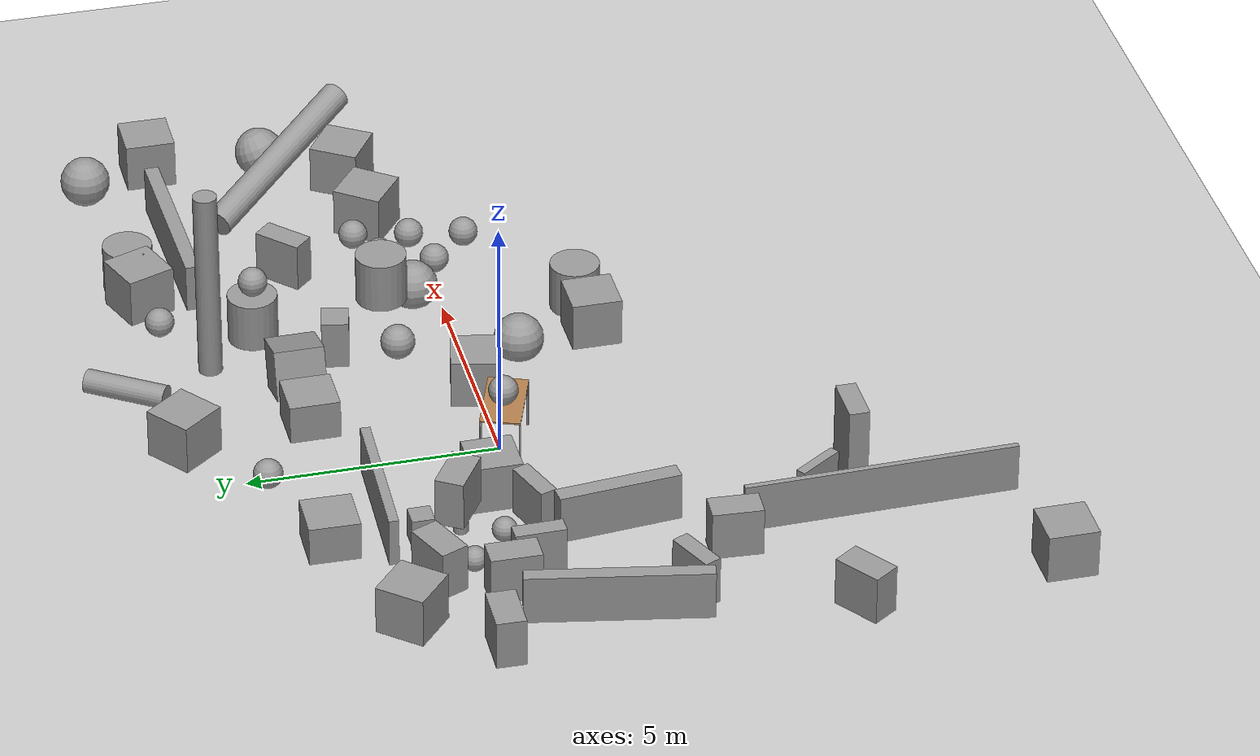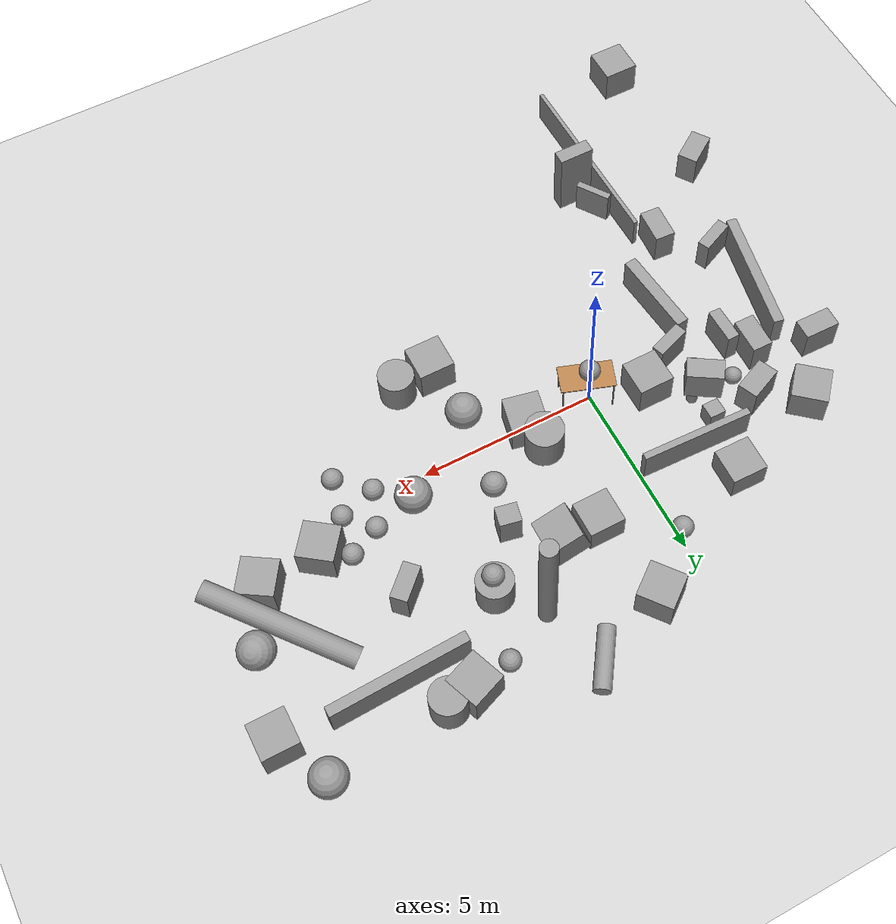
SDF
<sdf version="1.7">
 <world name="default">
  <model name="ground_plane">
   <static>1</static>
   <link name="link">
    <collision name="collision">
     <geometry><plane><normal>0 0 1</normal><size>100 100</size></plane></geometry>
     <surface>
      <contact><collide_bitmask>65535</collide_bitmask></contact>
      <friction><ode><mu>100</mu><mu2>50</mu2></ode></friction>
     </surface>
    </collision>
    <visual name="visual">
     <cast_shadows>0</cast_shadows>
     <geometry><plane><normal>0 0 1</normal><size>100 100</size></plane></geometry>
     <material>
      <script><uri>file://media/materials/scripts/gazebo.material</uri><name>Gazebo/Grey</name></script>
     </material>
    </visual>
   </link>
  </model>
  <model name="unit_sphere">
   <model name="table">
    <static>1</static>
    <link name="link">
     <collision name="surface">
      <pose>0 0 1 0 -0 0</pose>
      <geometry><box><size>1.5 0.8 0.03</size></box></geometry>
      <surface><friction><ode><mu>0.6</mu><mu2>0.6</mu2></ode></friction></surface>
     </collision>
     <visual name="visual1">
      <pose>0 0 1 0 -0 0</pose>
      <geometry><box><size>1.5 0.8 0.03</size></box></geometry>
      <material>
       <script><uri>file://media/materials/scripts/gazebo.material</uri><name>Gazebo/Wood</name></script>
      </material>
     </visual>
     <collision name="front_left_leg">
      <pose>0.68 0.38 0.5 0 -0 0</pose>
      <geometry><cylinder><radius>0.02</radius><length>1</length></cylinder></geometry>
     </collision>
     <visual name="front_left_leg">
      <pose>0.68 0.38 0.5 0 -0 0</pose>
      <geometry><cylinder><radius>0.02</radius><length>1</length></cylinder></geometry>
      <material>
       <script><uri>file://media/materials/scripts/gazebo.material</uri><name>Gazebo/Grey</name></script>
      </material>
     </visual>
     <collision name="front_right_leg">
      <pose>0.68 -0.38 0.5 0 -0 0</pose>
      <geometry><cylinder><radius>0.02</radius><length>1</length></cylinder></geometry>
     </collision>
     <visual name="front_right_leg">
      <pose>0.68 -0.38 0.5 0 -0 0</pose>
      <geometry><cylinder><radius>0.02</radius><length>1</length></cylinder></geometry>
      <material>
       <script><uri>file://media/materials/scripts/gazebo.material</uri><name>Gazebo/Grey</name></script>
      </material>
     </visual>
     <collision name="back_right_leg">
      <pose>-0.68 -0.38 0.5 0 -0 0</pose>
      <geometry><cylinder><radius>0.02</radius><length>1</length></cylinder></geometry>
     </collision>
     <visual name="back_right_leg">
      <pose>-0.68 -0.38 0.5 0 -0 0</pose>
      <geometry><cylinder><radius>0.02</radius><length>1</length></cylinder></geometry>
      <material>
       <script><uri>file://media/materials/scripts/gazebo.material</uri><name>Gazebo/Grey</name></script>
      </material>
     </visual>
     <collision name="back_left_leg">
      <pose>-0.68 0.38 0.5 0 -0 0</pose>
      <geometry><cylinder><radius>0.02</radius><length>1</length></cylinder></geometry>
     </collision>
     <visual name="back_left_leg">
      <pose>-0.68 0.38 0.5 0 -0 0</pose>
      <geometry><cylinder><radius>0.02</radius><length>1</length></cylinder></geometry>
      <material>
       <script><uri>file://media/materials/scripts/gazebo.material</uri><name>Gazebo/Grey</name></script>
      </material>
     </visual>
    </link>
    <pose>-2.51477 -2.25186 -0.442404 0 -0 0</pose>
   </model>
   <static>0</static>
   <pose>3.20141 1.17795 0.5 0 0 -0.34091</pose>
  </model>
  <model name="unit_sphere_0">
   <pose>5.54798 0.485771 0.291197 0 -0 0</pose>
   <link name="link">
    <inertial>
     <mass>1</mass>
     <inertia><ixx>0.1</ixx><ixy>0</ixy><ixz>0</ixz><iyy>0.1</iyy><iyz>0</iyz><izz>0.1</izz></inertia>
    </inertial>
    <collision name="collision"><geometry><sphere><radius>0.5</radius></sphere></geometry></collision>
    <visual name="visual">
     <geometry><sphere><radius>0.5</radius></sphere></geometry>
     <material>
      <script><name>Gazebo/Grey</name><uri>file://media/materials/scripts/gazebo.material</uri></script>
     </material>
    </visual>
   </link>
  </model>
  <model name="unit_sphere_0_clone">
   <pose>-0.150809 4.58878 0.291197 0 -0 0</pose>
   <link name="link">
    <inertial>
     <mass>1</mass>
     <inertia><ixx>0.1</ixx><ixy>0</ixy><ixz>0</ixz><iyy>0.1</iyy><iyz>0</iyz><izz>0.1</izz></inertia>
    </inertial>
    <collision name="collision"><geometry><sphere><radius>0.291197</radius></sphere></geometry></collision>
    <visual name="visual">
     <geometry><sphere><radius>0.291197</radius></sphere></geometry>
     <material>
      <script><name>Gazebo/Grey</name><uri>file://media/materials/scripts/gazebo.material</uri></script>
     </material>
    </visual>
   </link>
  </model>
  <model name="unit_sphere_0_clone_0">
   <pose>7.21686 -0.927743 0.291197 0 -0 0</pose>
   <link name="link">
    <inertial>
     <mass>1</mass>
     <inertia><ixx>0.1</ixx><ixy>0</ixy><ixz>0</ixz><iyy>0.1</iyy><iyz>0</iyz><izz>0.1</izz></inertia>
    </inertial>
    <collision name="collision"><geometry><sphere><radius>0.291197</radius></sphere></geometry></collision>
    <visual name="visual">
     <geometry><sphere><radius>0.291197</radius></sphere></geometry>
     <material>
      <script><name>Gazebo/Grey</name><uri>file://media/materials/scripts/gazebo.material</uri></script>
     </material>
    </visual>
   </link>
  </model>
  <model name="unit_sphere_0_clone_1">
   <pose>6.40605 -0.147602 0.291197 0 -0 0</pose>
   <link name="link">
    <inertial>
     <mass>1</mass>
     <inertia><ixx>0.1</ixx><ixy>0</ixy><ixz>0</ixz><iyy>0.1</iyy><iyz>0</iyz><izz>0.1</izz></inertia>
    </inertial>
    <collision name="collision"><geometry><sphere><radius>0.291197</radius></sphere></geometry></collision>
    <visual name="visual">
     <geometry><sphere><radius>0.291197</radius></sphere></geometry>
     <material>
      <script><name>Gazebo/Grey</name><uri>file://media/materials/scripts/gazebo.material</uri></script>
     </material>
    </visual>
   </link>
  </model>
  <model name="unit_sphere_0_clone_2">
   <pose>7.63755 1.25974 0.291197 0 -0 0</pose>
   <link name="link">
    <inertial>
     <mass>1</mass>
     <inertia><ixx>0.1</ixx><ixy>0</ixy><ixz>0</ixz><iyy>0.1</iyy><iyz>0</iyz><izz>0.1</izz></inertia>
    </inertial>
    <collision name="collision"><geometry><sphere><radius>0.291197</radius></sphere></geometry></collision>
    <visual name="visual">
     <geometry><sphere><radius>0.291197</radius></sphere></geometry>
     <material>
      <script><name>Gazebo/Grey</name><uri>file://media/materials/scripts/gazebo.material</uri></script>
     </material>
    </visual>
   </link>
  </model>
  <model name="unit_sphere_0_clone_3">
   <pose>6.78619 0.894855 0.344254 0 -0 0</pose>
   <link name="link">
    <inertial>
     <mass>1</mass>
     <inertia><ixx>0.1</ixx><ixy>0</ixy><ixz>0</ixz><iyy>0.1</iyy><iyz>0</iyz><izz>0.1</izz></inertia>
    </inertial>
    <collision name="collision"><geometry><sphere><radius>0.291196</radius></sphere></geometry></collision>
    <visual name="visual">
     <geometry><sphere><radius>0.291196</radius></sphere></geometry>
     <material>
      <script><name>Gazebo/Grey</name><uri>file://media/materials/scripts/gazebo.material</uri></script>
     </material>
    </visual>
   </link>
  </model>
  <model name="unit_sphere_0_clone_4">
   <pose>0.006465 -0.072944 1.36379 0 1e-06 0</pose>
   <link name="link">
    <inertial>
     <mass>1</mass>
     <inertia><ixx>0.1</ixx><ixy>0</ixy><ixz>0</ixz><iyy>0.1</iyy><iyz>0</iyz><izz>0.1</izz></inertia>
    </inertial>
    <collision name="collision"><geometry><sphere><radius>0.291197</radius></sphere></geometry></collision>
    <visual name="visual">
     <geometry><sphere><radius>0.291197</radius></sphere></geometry>
     <material>
      <script><name>Gazebo/Grey</name><uri>file://media/materials/scripts/gazebo.material</uri></script>
     </material>
    </visual>
   </link>
  </model>
  <model name="unit_sphere_0_clone_5">
   <pose>7.42804 0.154026 0.291197 0.010448 -0.009913 -0.012454</pose>
   <link name="link">
    <inertial>
     <mass>1</mass>
     <inertia><ixx>0.1</ixx><ixy>0</ixy><ixz>0</ixz><iyy>0.1</iyy><iyz>0</iyz><izz>0.1</izz></inertia>
    </inertial>
    <collision name="collision"><geometry><sphere><radius>0.291197</radius></sphere></geometry></collision>
    <visual name="visual">
     <geometry><sphere><radius>0.291197</radius></sphere></geometry>
     <material>
      <script><name>Gazebo/Grey</name><uri>file://media/materials/scripts/gazebo.material</uri></script>
     </material>
    </visual>
   </link>
  </model>
  <model name="unit_sphere_0_clone_6">
   <pose>4.93053 3.84155 1.29116 -0.011198 0.004689 2.1e-05</pose>
   <link name="link">
    <inertial>
     <mass>1</mass>
     <inertia><ixx>0.1</ixx><ixy>0</ixy><ixz>0</ixz><iyy>0.1</iyy><iyz>0</iyz><izz>0.1</izz></inertia>
    </inertial>
    <collision name="collision"><geometry><sphere><radius>0.291197</radius></sphere></geometry></collision>
    <visual name="visual">
     <geometry><sphere><radius>0.291197</radius></sphere></geometry>
     <material>
      <script><name>Gazebo/Grey</name><uri>file://media/materials/scripts/gazebo.material</uri></script>
     </material>
    </visual>
   </link>
  </model>
  <model name="unit_cylinder_0">
   <pose>2.39577 1.78612 2.74894 0 0 -0.066001</pose>
   <link name="link">
    <inertial>
     <mass>1</mass>
     <inertia><ixx>0.145833</ixx><ixy>0</ixy><ixz>0</ixz><iyy>0.145833</iyy><iyz>0</iyz><izz>0.125</izz></inertia>
    </inertial>
    <collision name="collision">
     <geometry><cylinder><radius>0.499998</radius><length>1</length></cylinder></geometry>
    </collision>
    <visual name="visual">
     <geometry><cylinder><radius>0.499998</radius><length>1</length></cylinder></geometry>
     <material>
      <script><name>Gazebo/Grey</name><uri>file://media/materials/scripts/gazebo.material</uri></script>
     </material>
    </visual>
   </link>
  </model>
  <model name="unit_cylinder_1">
   <pose>4.91267 3.8665 0.499961 2e-06 2e-06 -0.000394</pose>
   <link name="link">
    <inertial>
     <mass>1</mass>
     <inertia><ixx>0.145833</ixx><ixy>0</ixy><ixz>0</ixz><iyy>0.145833</iyy><iyz>0</iyz><izz>0.125</izz></inertia>
    </inertial>
    <collision name="collision">
     <geometry><cylinder><radius>0.5</radius><length>1</length></cylinder></geometry>
    </collision>
    <visual name="visual">
     <geometry><cylinder><radius>0.5</radius><length>1</length></cylinder></geometry>
     <material>
      <script><name>Gazebo/Grey</name><uri>file://media/materials/scripts/gazebo.material</uri></script>
     </material>
    </visual>
   </link>
  </model>
  <model name="unit_box_0">
   <pose>-2.32071 3.83463 0.273423 0 0 -0.02053</pose>
   <link name="link">
    <inertial>
     <mass>1</mass>
     <inertia>
      <ixx>0.166667</ixx>
      <ixy>0</ixy>
      <ixz>0</ixz>
      <iyy>0.166667</iyy>
      <iyz>0</iyz>
      <izz>0.166667</izz>
     </inertia>
    </inertial>
    <collision name="collision"><geometry><box><size>1 1 1</size></box></geometry></collision>
    <visual name="visual">
     <geometry><box><size>1 1 1</size></box></geometry>
     <material>
      <script><name>Gazebo/Grey</name><uri>file://media/materials/scripts/gazebo.material</uri></script>
     </material>
    </visual>
   </link>
  </model>
  <model name="unit_box_1">
   <pose>1.33301 5.92734 0.5 0 -0 0.660682</pose>
   <link name="link">
    <inertial>
     <mass>1</mass>
     <inertia>
      <ixx>0.166667</ixx>
      <ixy>0</ixy>
      <ixz>0</ixz>
      <iyy>0.166667</iyy>
      <iyz>0</iyz>
      <izz>0.166667</izz>
     </inertia>
    </inertial>
    <collision name="collision"><geometry><box><size>1 1 1</size></box></geometry></collision>
    <visual name="visual">
     <geometry><box><size>1 1 1</size></box></geometry>
     <material>
      <script><name>Gazebo/Grey</name><uri>file://media/materials/scripts/gazebo.material</uri></script>
     </material>
    </visual>
   </link>
  </model>
  <model name="unit_sphere_1">
   <pose>3.25967 -1.14554 0.259212 0 -0 0</pose>
   <link name="link">
    <inertial>
     <mass>1</mass>
     <inertia><ixx>0.1</ixx><ixy>0</ixy><ixz>0</ixz><iyy>0.1</iyy><iyz>0</iyz><izz>0.1</izz></inertia>
    </inertial>
    <collision name="collision"><geometry><sphere><radius>0.5</radius></sphere></geometry></collision>
    <visual name="visual">
     <geometry><sphere><radius>0.5</radius></sphere></geometry>
     <material>
      <script><name>Gazebo/Grey</name><uri>file://media/materials/scripts/gazebo.material</uri></script>
     </material>
    </visual>
   </link>
  </model>
  <model name="unit_box_2">
   <pose>1.67633 3.38533 0.278117 -9e-06 1e-05 0.001096</pose>
   <link name="link">
    <inertial>
     <mass>1</mass>
     <inertia>
      <ixx>0.166667</ixx>
      <ixy>0</ixy>
      <ixz>0</ixz>
      <iyy>0.166667</iyy>
      <iyz>0</iyz>
      <izz>0.166667</izz>
     </inertia>
    </inertial>
    <collision name="collision"><geometry><box><size>1 1 0.999997</size></box></geometry></collision>
    <visual name="visual">
     <geometry><box><size>1 1 0.999997</size></box></geometry>
     <material>
      <script><name>Gazebo/Grey</name><uri>file://media/materials/scripts/gazebo.material</uri></script>
     </material>
    </visual>
   </link>
  </model>
  <model name="unit_box_3">
   <pose>2.78012 3.432 0.631595 -0.000204 -1.29072 0.001222</pose>
   <link name="link">
    <inertial>
     <mass>1</mass>
     <inertia>
      <ixx>0.166667</ixx>
      <ixy>0</ixy>
      <ixz>0</ixz>
      <iyy>0.166667</iyy>
      <iyz>0</iyz>
      <izz>0.166667</izz>
     </inertia>
    </inertial>
    <collision name="collision"><geometry><box><size>1 0.999997 1</size></box></geometry></collision>
    <visual name="visual">
     <geometry><box><size>1 0.999997 1</size></box></geometry>
     <material>
      <script><name>Gazebo/Grey</name><uri>file://media/materials/scripts/gazebo.material</uri></script>
     </material>
    </visual>
   </link>
  </model>
  <model name="unit_box_4">
   <pose>8.31013 0.830157 0.5 0 3e-06 -0.645762</pose>
   <link name="link">
    <inertial>
     <mass>1</mass>
     <inertia>
      <ixx>0.166667</ixx>
      <ixy>0</ixy>
      <ixz>0</ixz>
      <iyy>0.166667</iyy>
      <iyz>0</iyz>
      <izz>0.166667</izz>
     </inertia>
    </inertial>
    <collision name="collision"><geometry><box><size>1 1 1</size></box></geometry></collision>
    <visual name="visual">
     <geometry><box><size>1 1 1</size></box></geometry>
     <material>
      <script><name>Gazebo/Grey</name><uri>file://media/materials/scripts/gazebo.material</uri></script>
     </material>
    </visual>
   </link>
  </model>
  <model name="unit_sphere_0_clone_3_clone">
   <pose>5.42517 5.64532 0.291197 0 -0 0</pose>
   <link name="link">
    <inertial>
     <mass>1</mass>
     <inertia><ixx>0.1</ixx><ixy>0</ixy><ixz>0</ixz><iyy>0.1</iyy><iyz>0</iyz><izz>0.1</izz></inertia>
    </inertial>
    <collision name="collision"><geometry><sphere><radius>0.291197</radius></sphere></geometry></collision>
    <visual name="visual">
     <geometry><sphere><radius>0.291197</radius></sphere></geometry>
     <material>
      <script><name>Gazebo/Grey</name><uri>file://media/materials/scripts/gazebo.material</uri></script>
     </material>
    </visual>
   </link>
  </model>
  <model name="unit_box_5">
   <pose>6.49163 5.84807 0.499995 -1.57079 -1.57079 1.93464</pose>
   <link name="link">
    <inertial>
     <mass>1</mass>
     <inertia>
      <ixx>0.166667</ixx>
      <ixy>0</ixy>
      <ixz>0</ixz>
      <iyy>0.166667</iyy>
      <iyz>0</iyz>
      <izz>0.166667</izz>
     </inertia>
    </inertial>
    <collision name="collision"><geometry><box><size>1 1 1</size></box></geometry></collision>
    <visual name="visual">
     <geometry><box><size>1 1 1</size></box></geometry>
     <material>
      <script><name>Gazebo/Grey</name><uri>file://media/materials/scripts/gazebo.material</uri></script>
     </material>
    </visual>
   </link>
  </model>
  <model name="unit_cylinder_2">
   <pose>7.24066 5.93897 0.499993 0 -0 0.027733</pose>
   <link name="link">
    <inertial>
     <mass>1</mass>
     <inertia><ixx>0.145833</ixx><ixy>0</ixy><ixz>0</ixz><iyy>0.145833</iyy><iyz>0</iyz><izz>0.125</izz></inertia>
    </inertial>
    <collision name="collision">
     <geometry><cylinder><radius>0.500001</radius><length>1</length></cylinder></geometry>
    </collision>
    <visual name="visual">
     <geometry><cylinder><radius>0.500001</radius><length>1</length></cylinder></geometry>
     <material>
      <script><name>Gazebo/Grey</name><uri>file://media/materials/scripts/gazebo.material</uri></script>
     </material>
    </visual>
   </link>
  </model>
  <model name="unit_box_6">
   <pose>2.0012 0.00841 0.5 -0 -0 -0.20889</pose>
   <link name="link">
    <inertial>
     <mass>1</mass>
     <inertia>
      <ixx>0.166667</ixx>
      <ixy>0</ixy>
      <ixz>0</ixz>
      <iyy>0.166667</iyy>
      <iyz>0</iyz>
      <izz>0.166667</izz>
     </inertia>
    </inertial>
    <collision name="collision"><geometry><box><size>1 0.999998 1</size></box></geometry></collision>
    <visual name="visual">
     <geometry><box><size>1 0.999998 1</size></box></geometry>
     <material>
      <script><name>Gazebo/Grey</name><uri>file://media/materials/scripts/gazebo.material</uri></script>
     </material>
    </visual>
   </link>
  </model>
  <model name="unit_box_6_clone">
   <pose>-2.64273 1.43177 1.09239 -1e-06 -0 1.00675</pose>
   <link name="link">
    <inertial>
     <mass>1</mass>
     <inertia>
      <ixx>0.166667</ixx>
      <ixy>0</ixy>
      <ixz>0</ixz>
      <iyy>0.166667</iyy>
      <iyz>0</iyz>
      <izz>0.166667</izz>
     </inertia>
    </inertial>
    <collision name="collision"><geometry><box><size>0.577514 0.999999 1</size></box></geometry></collision>
    <visual name="visual">
     <geometry><box><size>0.577514 0.999999 1</size></box></geometry>
     <material>
      <script><name>Gazebo/Grey</name><uri>file://media/materials/scripts/gazebo.material</uri></script>
     </material>
    </visual>
   </link>
  </model>
  <model name="unit_box_6_clone_0">
   <pose>-4.18818 -3.56952 0.499687 -0.000187 -7e-06 -0.06133</pose>
   <link name="link">
    <inertial>
     <mass>1</mass>
     <inertia>
      <ixx>0.166667</ixx>
      <ixy>0</ixy>
      <ixz>0</ixz>
      <iyy>0.166667</iyy>
      <iyz>0</iyz>
      <izz>0.166667</izz>
     </inertia>
    </inertial>
    <collision name="collision"><geometry><box><size>0.577512 0.999999 1</size></box></geometry></collision>
    <visual name="visual">
     <geometry><box><size>0.577512 0.999999 1</size></box></geometry>
     <material>
      <script><name>Gazebo/Grey</name><uri>file://media/materials/scripts/gazebo.material</uri></script>
     </material>
    </visual>
   </link>
  </model>
  <model name="unit_box_6_clone_2">
   <pose>-4.60414 0.816018 0.499999 3e-06 2e-06 -0.0149</pose>
   <link name="link">
    <inertial>
     <mass>1</mass>
     <inertia>
      <ixx>0.166667</ixx>
      <ixy>0</ixy>
      <ixz>0</ixz>
      <iyy>0.166667</iyy>
      <iyz>0</iyz>
      <izz>0.166667</izz>
     </inertia>
    </inertial>
    <collision name="collision"><geometry><box><size>0.577513 1 1</size></box></geometry></collision>
    <visual name="visual">
     <geometry><box><size>0.577513 1 1</size></box></geometry>
     <material>
      <script><name>Gazebo/Grey</name><uri>file://media/materials/scripts/gazebo.material</uri></script>
     </material>
    </visual>
   </link>
  </model>
  <model name="unit_box_6_clone_3">
   <pose>-6.31696 1.36995 0.499862 9.7e-05 4e-06 -1.59211</pose>
   <link name="link">
    <inertial>
     <mass>1</mass>
     <inertia>
      <ixx>0.166667</ixx>
      <ixy>0</ixy>
      <ixz>0</ixz>
      <iyy>0.166667</iyy>
      <iyz>0</iyz>
      <izz>0.166667</izz>
     </inertia>
    </inertial>
    <collision name="collision"><geometry><box><size>0.577514 0.999997 1</size></box></geometry></collision>
    <visual name="visual">
     <geometry><box><size>0.577514 0.999997 1</size></box></geometry>
     <material>
      <script><name>Gazebo/Grey</name><uri>file://media/materials/scripts/gazebo.material</uri></script>
     </material>
    </visual>
   </link>
  </model>
  <model name="unit_box_6_clone_4">
   <pose>-3.93801 2.08413 0.5 0 1e-06 -1.16213</pose>
   <link name="link">
    <inertial>
     <mass>1</mass>
     <inertia>
      <ixx>0.166667</ixx>
      <ixy>0</ixy>
      <ixz>0</ixz>
      <iyy>0.166667</iyy>
      <iyz>0</iyz>
      <izz>0.166667</izz>
     </inertia>
    </inertial>
    <collision name="collision"><geometry><box><size>0.577514 1 1</size></box></geometry></collision>
    <visual name="visual">
     <geometry><box><size>0.577514 1 1</size></box></geometry>
     <material>
      <script><name>Gazebo/Grey</name><uri>file://media/materials/scripts/gazebo.material</uri></script>
     </material>
    </visual>
   </link>
  </model>
  <model name="unit_sphere_2">
   <pose>3.5769 1.22643 0.343236 0 -0 0</pose>
   <link name="link">
    <inertial>
     <mass>1</mass>
     <inertia><ixx>0.1</ixx><ixy>0</ixy><ixz>0</ixz><iyy>0.1</iyy><iyz>0</iyz><izz>0.1</izz></inertia>
    </inertial>
    <collision name="collision"><geometry><sphere><radius>0.343236</radius></sphere></geometry></collision>
    <visual name="visual">
     <geometry><sphere><radius>0.343236</radius></sphere></geometry>
     <material>
      <script><name>Gazebo/Grey</name><uri>file://media/materials/scripts/gazebo.material</uri></script>
     </material>
    </visual>
   </link>
  </model>
  <model name="unit_box_7">
   <pose>-2.89938 -6.18954 1.05836 -1e-06 -0 -0.000751</pose>
   <link name="link">
    <inertial>
     <mass>1</mass>
     <inertia>
      <ixx>0.166667</ixx>
      <ixy>0</ixy>
      <ixz>0</ixz>
      <iyy>0.166667</iyy>
      <iyz>0</iyz>
      <izz>0.166667</izz>
     </inertia>
    </inertial>
    <collision name="collision"><geometry><box><size>1 0.400151 2.11672</size></box></geometry></collision>
    <visual name="visual">
     <geometry><box><size>1 0.400151 2.11672</size></box></geometry>
     <material>
      <script><name>Gazebo/Grey</name><uri>file://media/materials/scripts/gazebo.material</uri></script>
     </material>
    </visual>
   </link>
  </model>
  <model name="unit_box_8">
   <pose>-3.61587 -6.60318 0.496914 -0.001137 2.1e-05 0.018725</pose>
   <link name="link">
    <inertial>
     <mass>1</mass>
     <inertia>
      <ixx>0.166667</ixx>
      <ixy>0</ixy>
      <ixz>0</ixz>
      <iyy>0.166667</iyy>
      <iyz>0</iyz>
      <izz>0.166667</izz>
     </inertia>
    </inertial>
    <collision name="collision"><geometry><box><size>0.114857 5.43189 1</size></box></geometry></collision>
    <visual name="visual">
     <geometry><box><size>0.114857 5.43189 1</size></box></geometry>
     <material>
      <script><name>Gazebo/Grey</name><uri>file://media/materials/scripts/gazebo.material</uri></script>
     </material>
    </visual>
   </link>
  </model>
  <model name="unit_box_9">
   <pose>-3.17966 -5.45481 0.5 0 -0 0.595987</pose>
   <link name="link">
    <inertial>
     <mass>1</mass>
     <inertia>
      <ixx>0.166667</ixx>
      <ixy>0</ixy>
      <ixz>0</ixz>
      <iyy>0.166667</iyy>
      <iyz>0</iyz>
      <izz>0.166667</izz>
     </inertia>
    </inertial>
    <collision name="collision"><geometry><box><size>0.195898 1 1</size></box></geometry></collision>
    <visual name="visual">
     <geometry><box><size>0.195898 1 1</size></box></geometry>
     <material>
      <script><name>Gazebo/Grey</name><uri>file://media/materials/scripts/gazebo.material</uri></script>
     </material>
    </visual>
   </link>
  </model>
  <model name="unit_box_10">
   <pose>-1.46532 0.505509 0.499982 -4e-06 -0 0.003376</pose>
   <link name="link">
    <inertial>
     <mass>1</mass>
     <inertia>
      <ixx>0.166667</ixx>
      <ixy>0</ixy>
      <ixz>0</ixz>
      <iyy>0.166667</iyy>
      <iyz>0</iyz>
      <izz>0.166667</izz>
     </inertia>
    </inertial>
    <collision name="collision"><geometry><box><size>1 1 1</size></box></geometry></collision>
    <visual name="visual">
     <geometry><box><size>1 1 1</size></box></geometry>
     <material>
      <script><name>Gazebo/Grey</name><uri>file://media/materials/scripts/gazebo.material</uri></script>
     </material>
    </visual>
   </link>
  </model>
  <model name="unit_cylinder_3">
   <pose>3.36756 6.68777 0.237798 1.57079 0.011281 -0.590006</pose>
   <link name="link">
    <inertial>
     <mass>1</mass>
     <inertia><ixx>0.145833</ixx><ixy>0</ixy><ixz>0</ixz><iyy>0.145833</iyy><iyz>0</iyz><izz>0.125</izz></inertia>
    </inertial>
    <collision name="collision">
     <geometry><cylinder><radius>0.237803</radius><length>1.67948</length></cylinder></geometry>
    </collision>
    <visual name="visual">
     <geometry><cylinder><radius>0.237803</radius><length>1.67948</length></cylinder></geometry>
     <material>
      <script><name>Gazebo/Grey</name><uri>file://media/materials/scripts/gazebo.material</uri></script>
     </material>
    </visual>
   </link>
  </model>
  <model name="unit_sphere_3">
   <pose>10.5269 6.21854 0.5 0 -0 0</pose>
   <link name="link">
    <inertial>
     <mass>1</mass>
     <inertia><ixx>0.1</ixx><ixy>0</ixy><ixz>0</ixz><iyy>0.1</iyy><iyz>0</iyz><izz>0.1</izz></inertia>
    </inertial>
    <collision name="collision"><geometry><sphere><radius>0.5</radius></sphere></geometry></collision>
    <visual name="visual">
     <geometry><sphere><radius>0.5</radius></sphere></geometry>
     <material>
      <script><name>Gazebo/Grey</name><uri>file://media/materials/scripts/gazebo.material</uri></script>
     </material>
    </visual>
   </link>
  </model>
  <model name="unit_sphere_3_clone_2">
   <pose>10.7916 2.54567 0.49999 -0.364464 0.365616 -0.067018</pose>
   <link name="link">
    <inertial>
     <mass>1</mass>
     <inertia><ixx>0.1</ixx><ixy>0</ixy><ixz>0</ixz><iyy>0.1</iyy><iyz>0</iyz><izz>0.1</izz></inertia>
    </inertial>
    <collision name="collision"><geometry><sphere><radius>0.5</radius></sphere></geometry></collision>
    <visual name="visual">
     <geometry><sphere><radius>0.5</radius></sphere></geometry>
     <material>
      <script><name>Gazebo/Grey</name><uri>file://media/materials/scripts/gazebo.material</uri></script>
     </material>
    </visual>
   </link>
  </model>
  <model name="unit_cylinder_4">
   <pose>-2.43311 1.33235 0.499996 -2e-06 -0 -0.001428</pose>
   <link name="link">
    <inertial>
     <mass>1</mass>
     <inertia><ixx>0.145833</ixx><ixy>0</ixy><ixz>0</ixz><iyy>0.145833</iyy><iyz>0</iyz><izz>0.125</izz></inertia>
    </inertial>
    <collision name="collision">
     <geometry><cylinder><radius>0.148458</radius><length>1</length></cylinder></geometry>
    </collision>
    <visual name="visual">
     <geometry><cylinder><radius>0.148458</radius><length>1</length></cylinder></geometry>
     <material>
      <script><name>Gazebo/Grey</name><uri>file://media/materials/scripts/gazebo.material</uri></script>
     </material>
    </visual>
   </link>
  </model>
  <model name="unit_box_11">
   <pose>-2.57318 2.13618 0.308555 0 -0 0</pose>
   <link name="link">
    <inertial>
     <mass>1</mass>
     <inertia>
      <ixx>0.166667</ixx>
      <ixy>0</ixy>
      <ixz>0</ixz>
      <iyy>0.166667</iyy>
      <iyz>0</iyz>
      <izz>0.166667</izz>
     </inertia>
    </inertial>
    <collision name="collision">
     <geometry><box><size>0.453898 0.441754 0.617111</size></box></geometry>
    </collision>
    <visual name="visual">
     <geometry><box><size>0.453898 0.441754 0.617111</size></box></geometry>
     <material>
      <script><name>Gazebo/Grey</name><uri>file://media/materials/scripts/gazebo.material</uri></script>
     </material>
    </visual>
   </link>
  </model>
  <model name="unit_box_12">
   <pose>-1.64256 2.73183 0.499784 6e-06 -0.000139 -0.040445</pose>
   <link name="link">
    <inertial>
     <mass>1</mass>
     <inertia>
      <ixx>0.166667</ixx>
      <ixy>0</ixy>
      <ixz>0</ixz>
      <iyy>0.166667</iyy>
      <iyz>0</iyz>
      <izz>0.166667</izz>
     </inertia>
    </inertial>
    <collision name="collision"><geometry><box><size>3.12693 0.192939 1</size></box></geometry></collision>
    <visual name="visual">
     <geometry><box><size>3.12693 0.192939 1</size></box></geometry>
     <material>
      <script><name>Gazebo/Grey</name><uri>file://media/materials/scripts/gazebo.material</uri></script>
     </material>
    </visual>
   </link>
  </model>
  <model name="unit_cylinder_5">
   <pose>10.0342 2.31119 0.7663 1.23358 0.808743 0.484724</pose>
   <link name="link">
    <inertial>
     <mass>1</mass>
     <inertia><ixx>0.145833</ixx><ixy>0</ixy><ixz>0</ixz><iyy>0.145833</iyy><iyz>0</iyz><izz>0.125</izz></inertia>
    </inertial>
    <collision name="collision">
     <geometry><cylinder><radius>0.293987</radius><length>4.20389</length></cylinder></geometry>
    </collision>
    <visual name="visual">
     <geometry><cylinder><radius>0.293987</radius><length>4.20389</length></cylinder></geometry>
     <material>
      <script><name>Gazebo/Grey</name><uri>file://media/materials/scripts/gazebo.material</uri></script>
     </material>
    </visual>
   </link>
  </model>
  <model name="unit_box_13">
   <pose>10.0294 0.978102 0.499962 9e-05 2.9e-05 -0.575753</pose>
   <link name="link">
    <inertial>
     <mass>1</mass>
     <inertia>
      <ixx>0.166667</ixx>
      <ixy>0</ixy>
      <ixz>0</ixz>
      <iyy>0.166667</iyy>
      <iyz>0</iyz>
      <izz>0.166667</izz>
     </inertia>
    </inertial>
    <collision name="collision"><geometry><box><size>1 1 1</size></box></geometry></collision>
    <visual name="visual">
     <geometry><box><size>1 1 1</size></box></geometry>
     <material>
      <script><name>Gazebo/Grey</name><uri>file://media/materials/scripts/gazebo.material</uri></script>
     </material>
    </visual>
   </link>
  </model>
  <model name="unit_box_14">
   <pose>-2.49241 -0.085996 0.5 0 -0 0.338678</pose>
   <link name="link">
    <inertial>
     <mass>1</mass>
     <inertia>
      <ixx>0.166667</ixx>
      <ixy>0</ixy>
      <ixz>0</ixz>
      <iyy>0.166667</iyy>
      <iyz>0</iyz>
      <izz>0.166667</izz>
     </inertia>
    </inertial>
    <collision name="collision"><geometry><box><size>1 0.34787 1</size></box></geometry></collision>
    <visual name="visual">
     <geometry><box><size>1 0.34787 1</size></box></geometry>
     <material>
      <script><name>Gazebo/Grey</name><uri>file://media/materials/scripts/gazebo.material</uri></script>
     </material>
    </visual>
   </link>
  </model>
  <model name="unit_box_15">
   <pose>-6.14334 -9.47381 0.499995 1e-05 -0 0</pose>
   <link name="link">
    <inertial>
     <mass>1</mass>
     <inertia>
      <ixx>0.166667</ixx>
      <ixy>0</ixy>
      <ixz>0</ixz>
      <iyy>0.166667</iyy>
      <iyz>0</iyz>
      <izz>0.166667</izz>
     </inertia>
    </inertial>
    <collision name="collision"><geometry><box><size>1 1 1</size></box></geometry></collision>
    <visual name="visual">
     <geometry><box><size>1 1 1</size></box></geometry>
     <material>
      <script><name>Gazebo/Grey</name><uri>file://media/materials/scripts/gazebo.material</uri></script>
     </material>
    </visual>
   </link>
  </model>
  <model name="unit_box_6_clone_3_clone">
   <pose>-5.75992 -0.925627 0.499834 9.3e-05 -4e-06 -0.190271</pose>
   <link name="link">
    <inertial>
     <mass>1</mass>
     <inertia>
      <ixx>0.166667</ixx>
      <ixy>0</ixy>
      <ixz>0</ixz>
      <iyy>0.166667</iyy>
      <iyz>0</iyz>
      <izz>0.166667</izz>
     </inertia>
    </inertial>
    <collision name="collision"><geometry><box><size>0.291442 3.57979 1</size></box></geometry></collision>
    <visual name="visual">
     <geometry><box><size>0.291442 3.57979 1</size></box></geometry>
     <material>
      <script><name>Gazebo/Grey</name><uri>file://media/materials/scripts/gazebo.material</uri></script>
     </material>
    </visual>
   </link>
  </model>
  <model name="unit_box_6_clone_3_clone_0">
   <pose>-6.56442 -5.44892 0.5 0 0 -0.967338</pose>
   <link name="link">
    <inertial>
     <mass>1</mass>
     <inertia>
      <ixx>0.166667</ixx>
      <ixy>0</ixy>
      <ixz>0</ixz>
      <iyy>0.166667</iyy>
      <iyz>0</iyz>
      <izz>0.166667</izz>
     </inertia>
    </inertial>
    <collision name="collision"><geometry><box><size>0.577514 1 1</size></box></geometry></collision>
    <visual name="visual">
     <geometry><box><size>0.577514 1 1</size></box></geometry>
     <material>
      <script><name>Gazebo/Grey</name><uri>file://media/materials/scripts/gazebo.material</uri></script>
     </material>
    </visual>
   </link>
  </model>
  <model name="unit_box_6_clone_1">
   <pose>3.78269 2.43725 0.5 0 -0 -0.209148</pose>
   <link name="link">
    <inertial>
     <mass>1</mass>
     <inertia>
      <ixx>0.166667</ixx>
      <ixy>0</ixy>
      <ixz>0</ixz>
      <iyy>0.166667</iyy>
      <iyz>0</iyz>
      <izz>0.166667</izz>
     </inertia>
    </inertial>
    <collision name="collision"><geometry><box><size>0.595049 0.542105 1</size></box></geometry></collision>
    <visual name="visual">
     <geometry><box><size>0.595049 0.542105 1</size></box></geometry>
     <material>
      <script><name>Gazebo/Grey</name><uri>file://media/materials/scripts/gazebo.material</uri></script>
     </material>
    </visual>
   </link>
  </model>
  <model name="unit_cylinder_6">
   <pose>3.98535 4.90759 2.02034 0 -0 0.013942</pose>
   <link name="link">
    <inertial>
     <mass>1</mass>
     <inertia><ixx>0.145833</ixx><ixy>0</ixy><ixz>0</ixz><iyy>0.145833</iyy><iyz>0</iyz><izz>0.125</izz></inertia>
    </inertial>
    <collision name="collision">
     <geometry><cylinder><radius>0.238673</radius><length>4.04067</length></cylinder></geometry>
    </collision>
    <visual name="visual">
     <geometry><cylinder><radius>0.238673</radius><length>4.04067</length></cylinder></geometry>
     <material>
      <script><name>Gazebo/Grey</name><uri>file://media/materials/scripts/gazebo.material</uri></script>
     </material>
    </visual>
   </link>
  </model>
  <model name="unit_box_16">
   <pose>11.258 4.80795 0.499995 0 1e-05 0</pose>
   <link name="link">
    <inertial>
     <mass>1</mass>
     <inertia>
      <ixx>0.166667</ixx>
      <ixy>0</ixy>
      <ixz>0</ixz>
      <iyy>0.166667</iyy>
      <iyz>0</iyz>
      <izz>0.166667</izz>
     </inertia>
    </inertial>
    <collision name="collision"><geometry><box><size>1 1 1</size></box></geometry></collision>
    <visual name="visual">
     <geometry><box><size>1 1 1</size></box></geometry>
     <material>
      <script><name>Gazebo/Grey</name><uri>file://media/materials/scripts/gazebo.material</uri></script>
     </material>
    </visual>
   </link>
  </model>
  <model name="unit_box_17">
   <pose>8.04142 4.88191 0.499422 1e-05 0.000305 0.03223</pose>
   <link name="link">
    <inertial>
     <mass>1</mass>
     <inertia>
      <ixx>0.166667</ixx>
      <ixy>0</ixy>
      <ixz>0</ixz>
      <iyy>0.166667</iyy>
      <iyz>0</iyz>
      <izz>0.166667</izz>
     </inertia>
    </inertial>
    <collision name="collision"><geometry><box><size>3.79994 0.28907 1</size></box></geometry></collision>
    <visual name="visual">
     <geometry><box><size>3.79994 0.28907 1</size></box></geometry>
     <material>
      <script><name>Gazebo/Grey</name><uri>file://media/materials/scripts/gazebo.material</uri></script>
     </material>
    </visual>
   </link>
  </model>
  <model name="unit_box_14_clone">
   <pose>-4.05403 0.195924 0.5 0 -0 1.58451</pose>
   <link name="link">
    <inertial>
     <mass>1</mass>
     <inertia>
      <ixx>0.166667</ixx>
      <ixy>0</ixy>
      <ixz>0</ixz>
      <iyy>0.166667</iyy>
      <iyz>0</iyz>
      <izz>0.166667</izz>
     </inertia>
    </inertial>
    <collision name="collision"><geometry><box><size>1 0.34787 1</size></box></geometry></collision>
    <visual name="visual">
     <geometry><box><size>1 0.34787 1</size></box></geometry>
     <material>
      <script><name>Gazebo/Grey</name><uri>file://media/materials/scripts/gazebo.material</uri></script>
     </material>
    </visual>
   </link>
  </model>
  <model name="unit_box_14_clone_0">
   <pose>-2.97375 -1.6004 0.499956 1e-06 -3.6e-05 -1.47014</pose>
   <link name="link">
    <inertial>
     <mass>1</mass>
     <inertia>
      <ixx>0.166667</ixx>
      <ixy>0</ixy>
      <ixz>0</ixz>
      <iyy>0.166667</iyy>
      <iyz>0</iyz>
      <izz>0.166667</izz>
     </inertia>
    </inertial>
    <collision name="collision"><geometry><box><size>2.44398 0.34787 1</size></box></geometry></collision>
    <visual name="visual">
     <geometry><box><size>2.44398 0.34787 1</size></box></geometry>
     <material>
      <script><name>Gazebo/Grey</name><uri>file://media/materials/scripts/gazebo.material</uri></script>
     </material>
    </visual>
   </link>
  </model>
  <model name="unit_box_14_clone_1">
   <pose>-5.39469 -2.49592 0.499989 1e-06 -5e-06 0.416713</pose>
   <link name="link">
    <inertial>
     <mass>1</mass>
     <inertia>
      <ixx>0.166667</ixx>
      <ixy>0</ixy>
      <ixz>0</ixz>
      <iyy>0.166667</iyy>
      <iyz>0</iyz>
      <izz>0.166667</izz>
     </inertia>
    </inertial>
    <collision name="collision"><geometry><box><size>1 0.34787 1</size></box></geometry></collision>
    <visual name="visual">
     <geometry><box><size>1 0.34787 1</size></box></geometry>
     <material>
      <script><name>Gazebo/Grey</name><uri>file://media/materials/scripts/gazebo.material</uri></script>
     </material>
    </visual>
   </link>
  </model>
  <model name="unit_sphere_4">
   <pose>-2.91558 0.593259 0.244314 0 -0 0</pose>
   <link name="link">
    <inertial>
     <mass>1</mass>
     <inertia><ixx>0.1</ixx><ixy>0</ixy><ixz>0</ixz><iyy>0.1</iyy><iyz>0</iyz><izz>0.1</izz></inertia>
    </inertial>
    <collision name="collision"><geometry><sphere><radius>0.244314</radius></sphere></geometry></collision>
    <visual name="visual">
     <geometry><sphere><radius>0.244314</radius></sphere></geometry>
     <material>
      <script><name>Gazebo/Grey</name><uri>file://media/materials/scripts/gazebo.material</uri></script>
     </material>
    </visual>
   </link>
  </model>
  <model name="unit_sphere_4_clone">
   <pose>-3.70252 1.35495 0.244314 0 -0 0</pose>
   <link name="link">
    <inertial>
     <mass>1</mass>
     <inertia><ixx>0.1</ixx><ixy>0</ixy><ixz>0</ixz><iyy>0.1</iyy><iyz>0</iyz><izz>0.1</izz></inertia>
    </inertial>
    <collision name="collision"><geometry><sphere><radius>0.244314</radius></sphere></geometry></collision>
    <visual name="visual">
     <geometry><sphere><radius>0.244314</radius></sphere></geometry>
     <material>
      <script><name>Gazebo/Grey</name><uri>file://media/materials/scripts/gazebo.material</uri></script>
     </material>
    </visual>
   </link>
  </model>
  <model name="unit_box_18">
   <pose>6.86577 2.84405 0.5 0 0 -0.802297</pose>
   <link name="link">
    <inertial>
     <mass>1</mass>
     <inertia>
      <ixx>0.166667</ixx>
      <ixy>0</ixy>
      <ixz>0</ixz>
      <iyy>0.166667</iyy>
      <iyz>0</iyz>
      <izz>0.166667</izz>
     </inertia>
    </inertial>
    <collision name="collision"><geometry><box><size>0.475316 1 1</size></box></geometry></collision>
    <visual name="visual">
     <geometry><box><size>0.475316 1 1</size></box></geometry>
     <material>
      <script><name>Gazebo/Grey</name><uri>file://media/materials/scripts/gazebo.material</uri></script>
     </material>
    </visual>
   </link>
  </model>
  <model name="unit_box_19">
   <pose>-5.13452 2.87883 0.5 0 -0 -0.714784</pose>
   <link name="link">
    <inertial>
     <mass>1</mass>
     <inertia>
      <ixx>0.166667</ixx>
      <ixy>0</ixy>
      <ixz>0</ixz>
      <iyy>0.166667</iyy>
      <iyz>0</iyz>
      <izz>0.166667</izz>
     </inertia>
    </inertial>
    <collision name="collision"><geometry><box><size>1 1 1</size></box></geometry></collision>
    <visual name="visual">
     <geometry><box><size>1 1 1</size></box></geometry>
     <material>
      <script><name>Gazebo/Grey</name><uri>file://media/materials/scripts/gazebo.material</uri></script>
     </material>
    </visual>
   </link>
  </model>
  <model name="unit_box_20">
   <pose>3.47737 -2.67394 0.5 0 -0 0</pose>
   <link name="link">
    <inertial>
     <mass>1</mass>
     <inertia>
      <ixx>0.166667</ixx>
      <ixy>0</ixy>
      <ixz>0</ixz>
      <iyy>0.166667</iyy>
      <iyz>0</iyz>
      <izz>0.166667</izz>
     </inertia>
    </inertial>
    <collision name="collision"><geometry><box><size>1 1 1</size></box></geometry></collision>
    <visual name="visual">
     <geometry><box><size>1 1 1</size></box></geometry>
     <material>
      <script><name>Gazebo/Grey</name><uri>file://media/materials/scripts/gazebo.material</uri></script>
     </material>
    </visual>
   </link>
  </model>
  <model name="unit_cylinder_7">
   <pose>4.52037 -2.58824 0.5 0 -0 0</pose>
   <link name="link">
    <inertial>
     <mass>1</mass>
     <inertia><ixx>0.145833</ixx><ixy>0</ixy><ixz>0</ixz><iyy>0.145833</iyy><iyz>0</iyz><izz>0.125</izz></inertia>
    </inertial>
    <collision name="collision">
     <geometry><cylinder><radius>0.5</radius><length>1</length></cylinder></geometry>
    </collision>
    <visual name="visual">
     <geometry><cylinder><radius>0.5</radius><length>1</length></cylinder></geometry>
     <material>
      <script><name>Gazebo/Grey</name><uri>file://media/materials/scripts/gazebo.material</uri></script>
     </material>
    </visual>
   </link>
  </model>
 </world>
</sdf>
